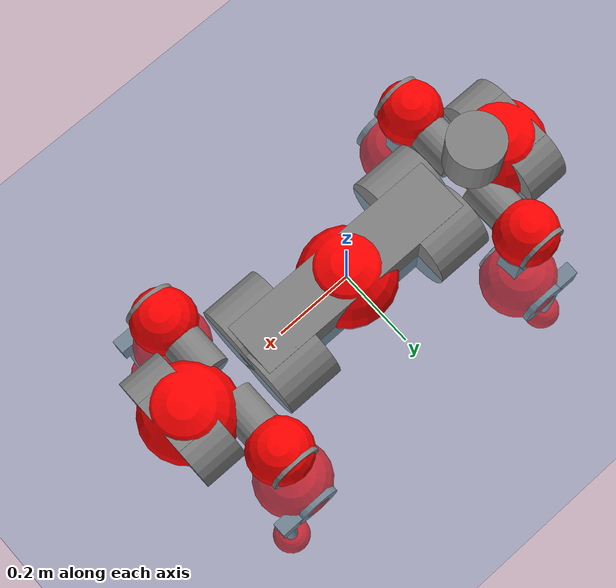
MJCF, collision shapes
<mujoco model="anymal_c">
  <compiler angle="radian" assetdir="assets" balanceinertia="true" inertiafromgeom="false"/>

  <option timestep="0.005" density="1.2" viscosity="2e-05"/>

  <size nkey="1"/>

  <visual>
    <quality shadowsize="8192"/>
    <map shadowclip="0.5"/>
  </visual>

  <default>
    <default class="/">
      <material specular="0" shininess="0.25"/>
      <geom contype="0" conaffinity="0" group="1" solref="-1000 -80"/>
      <site size="0.01 0.005 0.005" group="5"/>
      <general forcelimited="true" forcerange="-80 80" biastype="affine" gainprm="80" biasprm="0 -80 -2"/>
      <default class="anymal_c">
        <joint armature="0.01" damping="0.01" frictionloss="0.1"/>
        <default class="visual">
          <geom type="mesh" group="2"/>
          <default class="visual_zflip"/>
        </default>
        <default class="collision">
          <geom type="cylinder" group="3"/>
          <default class="foot">
            <geom size="0.03 0 0" type="sphere" condim="6" priority="1" friction="0.8 0.02 0.01" solimp="0.015 1 0.03"/>
          </default>
        </default>
      </default>
      <default class="reward_collision_sphere">
        <geom group="5" rgba="1 0 0 1"/>
      </default>
    </default>
  </default>

  <asset>
    <texture type="skybox" colorspace="auto" name="//unnamed_texture_0" builtin="gradient" rgb1="0.95 0.95 0.95" rgb2="0.95 0.95 0.95" width="100" height="600"/>
    <texture type="2d" colorspace="auto" name="texplane" builtin="checker" rgb1="0.345 0.575 0.748" rgb2="0.345 0.575 0.748" markrgb="1 1 1" width="512" height="512"/>
    <texture type="2d" colorspace="linear" name="base" file="base.png"/>
    <texture type="2d" colorspace="linear" name="top_shell" file="top_shell.png"/>
    <texture type="2d" colorspace="linear" name="bottom_shell" file="bottom_shell.png"/>
    <texture type="2d" colorspace="linear" name="remote" file="remote.png"/>
    <texture type="2d" colorspace="linear" name="hatch" file="hatch.png"/>
    <texture type="2d" colorspace="linear" name="handle" file="handle.png"/>
    <texture type="2d" colorspace="linear" name="face" file="face.png"/>
    <texture type="2d" colorspace="linear" name="battery" file="battery.png"/>
    <texture type="2d" colorspace="linear" name="lidar_cage" file="lidar_cage.png"/>
    <texture type="2d" colorspace="linear" name="depth_camera" file="depth_camera.png"/>
    <texture type="2d" colorspace="linear" name="wide_angle_camera" file="wide_angle_camera.png"/>
    <texture type="2d" colorspace="linear" name="lidar" file="lidar.png"/>
    <texture type="2d" colorspace="linear" name="drive" file="drive.png"/>
    <texture type="2d" colorspace="linear" name="hip_l" file="hip_l.png"/>
    <texture type="2d" colorspace="linear" name="shank_l" file="shank_l.png"/>
    <texture type="2d" colorspace="linear" name="foot" file="foot.png"/>
    <texture type="2d" colorspace="linear" name="thigh" file="thigh.png"/>
    <texture type="2d" colorspace="linear" name="shank_r" file="shank_r.png"/>
    <texture type="2d" colorspace="linear" name="hip_r" file="hip_r.png"/>
    <material name="MatPlane" class="/" texture="texplane" texuniform="true" texrepeat="2 2" specular="0.9" shininess="0.5"/>
    <material name="black_plastic" class="/" rgba="0.007 0.007 0.007 1"/>
    <material name="green" class="/" rgba="0.052 0.178 0.033 1"/>
    <material name="red" class="/" rgba="0.178 0.006 0.005 1"/>
    <material name="yellow" class="/" rgba="0.178 0.119 0.006 1"/>
    <material name="lwl" class="/" rgba="0.8 0.8 0.8 1"/>
    <material name="base" class="/" texture="base"/>
    <material name="top_shell" class="/" texture="top_shell"/>
    <material name="bottom_shell" class="/" texture="bottom_shell"/>
    <material name="hip_l" class="/" texture="hip_l"/>
    <material name="thigh" class="/" texture="thigh"/>
    <material name="shank_l" class="/" texture="shank_l"/>
    <material name="foot" class="/" texture="foot"/>
    <material name="hip_r" class="/" texture="hip_r"/>
    <material name="shank" class="/" texture="shank_r"/>
    <material name="hatch" class="/" texture="hatch"/>
    <material name="remote" class="/" texture="remote"/>
    <material name="handle" class="/" texture="handle"/>
    <material name="face" class="/" texture="face"/>
    <material name="depth_camera" class="/" texture="depth_camera"/>
    <material name="wide_angle_camera" class="/" texture="wide_angle_camera"/>
    <material name="battery" class="/" texture="battery"/>
    <material name="lidar_cage" class="/" texture="lidar_cage"/>
    <material name="lidar" class="/" texture="lidar"/>
    <material name="drive" class="/" texture="drive"/>
    <mesh name="base_0" class="/" file="base_0.obj"/>
    <mesh name="base_1" class="/" file="base_1.obj"/>
    <mesh name="base_2" class="/" file="base_2.obj"/>
    <mesh name="base_3" class="/" file="base_3.obj"/>
    <mesh name="base_4" class="/" file="base_4.obj"/>
    <mesh name="base_5" class="/" file="base_5.obj"/>
    <mesh name="top_shell" class="/" file="top_shell.obj"/>
    <mesh name="bottom_shell" class="/" file="bottom_shell.obj"/>
    <mesh name="remote" class="/" file="remote.obj"/>
    <mesh name="handle" class="/" file="handle.obj"/>
    <mesh name="face" class="/" file="face.obj"/>
    <mesh name="wide_angle_camera" class="/" file="wide_angle_camera.obj"/>
    <mesh name="depth_camera" class="/" file="depth_camera.obj"/>
    <mesh name="battery" class="/" file="battery.obj"/>
    <mesh name="lidar_cage" class="/" file="lidar_cage.obj"/>
    <mesh name="lidar" class="/" file="lidar.obj"/>
    <mesh name="drive" class="/" file="drive.obj"/>
    <mesh name="hip_l" class="/" file="hip_l.obj"/>
    <mesh name="thigh" class="/" file="thigh.obj"/>
    <mesh name="shank_l" class="/" file="shank_l.obj"/>
    <mesh name="foot" class="/" file="foot.obj"/>
    <mesh name="hip_r" class="/" file="hip_r.obj"/>
    <mesh name="hatch" class="/" file="hatch.obj"/>
    <mesh name="shank_r" class="/" file="shank_r.obj"/>
  </asset>

  <worldbody>
    <geom name="floor" class="/" size="100 100 0.125" type="plane" group="0" material="MatPlane"/>
    <light name="toplight_shadow" class="/" pos="0 0 5" dir="0.0990148 0.0990148 -0.990148" type="directional" ambient="0.04 0.04 0.04" diffuse="0.55 0.55 0.55" specular="0.12 0.12 0.12"/>
    <light name="toplight_fill" class="/" pos="0 0 5" dir="0.0990148 0.0990148 -0.990148" type="directional" castshadow="false" ambient="0.04 0.04 0.04" diffuse="0.3 0.3 0.3" specular="0.08 0.08 0.08"/>
    <body name="trunk" childclass="anymal_c" pos="-0.000205163 0.00088112 -0.000282638" quat="1 0.000144767 -0.00041318 3.90333e-05">
      <inertial pos="0.00332942 -0.000591906 0.0510158" quat="0.498418 0.498487 0.499906 0.503174" mass="18.7145" diaginertia="0.806759 0.366262 0.268487"/>
      <joint name="//unnamed_joint_0" type="free" armature="0" damping="0" frictionloss="0"/>
      <geom name="//unnamed_geom_1" class="visual" material="green" mesh="base_0"/>
      <geom name="//unnamed_geom_2" class="visual" material="yellow" mesh="base_1"/>
      <geom name="//unnamed_geom_3" class="visual" material="red" mesh="base_2"/>
      <geom name="//unnamed_geom_4" class="visual" material="black_plastic" mesh="base_3"/>
      <geom name="//unnamed_geom_5" class="visual" material="lwl" mesh="base_4"/>
      <geom name="//unnamed_geom_6" class="visual" material="base" mesh="base_5"/>
      <geom name="trunk_1" class="collision" size="0.289955 0.0699891 0.0899859" type="box"/>
      <geom name="trunk_2" class="collision" size="0.0899859 0.0724887" pos="0.228658 0.0630654 0" quat="0.707107 0 0.707107 0"/>
      <geom name="trunk_3" class="collision" size="0.0899859 0.0724887" pos="-0.228658 0.0630654 0" quat="0.707107 0 0.707107 0"/>
      <geom name="trunk_4" class="collision" size="0.0899859 0.0724887" pos="0.228658 -0.0630654 0" quat="0.707107 0 0.707107 0"/>
      <geom name="trunk_5" class="collision" size="0.0899859 0.0724887" pos="-0.228658 -0.0630654 0" quat="0.707107 0 0.707107 0"/>
      <geom name="//unnamed_geom_12" class="visual" material="top_shell" mesh="top_shell"/>
      <geom name="//unnamed_geom_13" class="visual" material="bottom_shell" mesh="bottom_shell"/>
      <geom name="//unnamed_geom_14" class="visual" material="remote" mesh="remote"/>
      <geom name="//unnamed_geom_15" class="visual" material="handle" mesh="handle"/>
      <geom name="//unnamed_geom_16" class="visual" pos="0.435764 0 0" quat="1 0 0 0" material="face" mesh="face"/>
      <geom name="trunk_6" class="collision" size="0.0549914 0.0699891 0.0899859" pos="0.493585 0 0" type="box"/>
      <geom name="//unnamed_geom_18" class="collision" size="0.0899859 0.0549914" pos="0.493585 0.0630654 0" quat="0.707107 0 0.707107 0"/>
      <geom name="//unnamed_geom_19" class="collision" size="0.0899859 0.0549914" pos="0.493585 -0.0630654 0" quat="0.707107 0 0.707107 0"/>
      <geom name="//unnamed_geom_20" class="visual" pos="0.485332 0 -0.0305506" quat="0.965926 0 0.258819 0" material="depth_camera" mesh="depth_camera"/>
      <geom name="//unnamed_geom_21" class="visual" pos="0.539317 0 0.015678" material="wide_angle_camera" mesh="wide_angle_camera"/>
      <geom name="//unnamed_geom_22" class="visual_zflip" pos="-0.435764 0 0" quat="0 0 0 1" material="face" mesh="face"/>
      <geom name="trunk_7" class="collision" size="0.0549914 0.0699891 0.0899859" pos="-0.493585 0 0" quat="0 0 0 1" type="box"/>
      <geom name="//unnamed_geom_24" class="collision" size="0.0899859 0.0549914" pos="-0.493585 -0.0630654 0" quat="0 -0.707107 0 0.707107"/>
      <geom name="//unnamed_geom_25" class="collision" size="0.0899859 0.0549914" pos="-0.493585 0.0630654 0" quat="0 -0.707107 0 0.707107"/>
      <geom name="//unnamed_geom_26" class="visual" pos="-0.485332 0 -0.0305506" quat="0 -0.258819 0 0.965926" material="depth_camera" mesh="depth_camera"/>
      <geom name="//unnamed_geom_27" class="visual_zflip" pos="-0.539317 0 0.015678" quat="0 0 0 1" material="wide_angle_camera" mesh="wide_angle_camera"/>
      <geom name="//unnamed_geom_28" class="visual" material="battery" mesh="battery"/>
      <geom name="//unnamed_geom_29" class="visual" pos="0 0.0669122 0.0304544" quat="0.683013 -0.183013 0.183013 0.683013" material="depth_camera" mesh="depth_camera"/>
      <geom name="//unnamed_geom_30" class="visual" pos="0 -0.0669122 0.0304544" quat="0.683013 0.183013 0.183013 -0.683013" material="depth_camera" mesh="depth_camera"/>
      <geom name="//unnamed_geom_31" class="visual" pos="-0.382673 0 0.0769763" quat="1 0 0 0" material="lidar_cage" mesh="lidar_cage"/>
      <geom name="trunk_8" class="collision" size="0.0699891 0.0599906" pos="-0.382673 0 0.139814"/>
      <geom name="//unnamed_geom_33" class="visual" pos="-0.382673 -5.90744e-05 0.148926" quat="0.707107 0 0 -0.707107" material="lidar" mesh="lidar"/>
      <geom name="//unnamed_geom_34" class="visual" pos="0.315285 0.0937492 -2.52476e-09" quat="0.258819 0.965926 0 0" material="drive" mesh="drive"/>
      <geom name="//unnamed_geom_35" class="visual" pos="0.315285 -0.0937492 2.52476e-09" quat="0.258819 -0.965926 0 0" material="drive" mesh="drive"/>
      <geom name="//unnamed_geom_36" class="visual" pos="-0.315285 0.0937492 2.52476e-09" quat="0 0 0.965926 -0.258819" material="drive" mesh="drive"/>
      <geom name="//unnamed_geom_37" class="visual" pos="-0.315285 -0.0937492 -2.52476e-09" quat="0 0 -0.965926 -0.258819" material="drive" mesh="drive"/>
      <geom name="//unnamed_geom_38" class="visual" pos="0.121951 0 0.0764527" quat="1 0 0 0" material="hatch" mesh="hatch"/>
      <geom name="//unnamed_geom_39" class="reward_collision_sphere" size="0.119981"/>
      <geom name="//unnamed_geom_40" class="reward_collision_sphere" size="0.119981" pos="0.473085 0 0"/>
      <geom name="//unnamed_geom_41" class="reward_collision_sphere" size="0.119981" pos="-0.473085 0 0"/>
      <site name="imu" pos="0.262583 0.00621872 0.047192" size="0.00999844"/>
      <camera name="track" pos="0 -1.80187 0" quat="0.707107 0.707107 0 0" mode="trackcom"/>
      <camera name="ego_camera" pos="0.473085 0 -0.0418919" quat="-0.5 -0.5 0.5 0.5"/>
      <body name="LF_HIP" pos="0.315602 0.0942062 0.000118347" quat="0.258731 0.965949 9.72775e-05 0.000102779">
        <inertial pos="0.0596262 -0.01287 -0.0086792" quat="-0.127111 0.706874 -0.136213 0.682362" mass="2.79989" diaginertia="0.00759269 0.0029535 0.00417916"/>
        <joint name="LF_HAA" pos="0 0 0" axis="1 0.000582767 0.000364708" range="-0.706229 0.480633" armature="0.0101051" damping="0.00921085" frictionloss="0.0995292"/>
        <geom name="//unnamed_geom_42" class="visual" pos="0 -0.00014852 2.43944e-05" quat="0.258819 -0.965926 0 0" material="hip_l" mesh="hip_l"/>
        <geom name="//unnamed_geom_43" class="visual" pos="0.0629729 -0.0743772 -0.0440243" quat="0.183013 -0.683013 0.683013 0.183013" material="drive" mesh="drive"/>
        <geom name="//unnamed_geom_44" class="collision" size="0.0499922 0.0699891" pos="0.0629729 -0.010775 -0.00723158" quat="-0.353553 -0.612372 0.612372 -0.353553"/>
        <body name="LF_THIGH" pos="0.0628104 -0.0663488 -0.0439925" quat="0.18283 -0.683112 0.683026 0.182773">
          <inertial pos="0.032411 0.000700946 -0.257516" quat="0.993241 -0.00544827 -0.0805552 0.0833859" mass="3.04386" diaginertia="0.0389827 0.0178332 0.00527052"/>
          <joint name="LF_HFE" pos="0 0 0" axis="0.999994 -0.00230204 0.0024721" range="-3.12637 3.13663" armature="0.0102348" damping="0.0101436" frictionloss="0.103892"/>
          <geom name="//unnamed_geom_45" class="visual" pos="0.00299167 4.71418e-06 0" quat="0.707107 0 0 -0.707107" material="thigh" mesh="thigh"/>
          <geom name="//unnamed_geom_46" class="collision" size="0.0649898 0.0399937" pos="0.042052 0 0" quat="0.5 0.5 -0.5 -0.5"/>
          <geom name="//unnamed_geom_47" class="collision" size="0.0374941 0.0299953 0.141292" pos="0.031539 0 -0.147998" quat="0.707107 0 0 -0.707107" type="box"/>
          <geom name="//unnamed_geom_48" class="visual" pos="0.105445 0 -0.29848" quat="1 0 0 0" material="drive" mesh="drive"/>
          <geom name="//unnamed_geom_49" class="collision" size="0.0499922 0.0699891" pos="0.0318544 0 -0.29848" quat="0.707107 0 0.707107 0"/>
          <geom name="//unnamed_geom_50" class="reward_collision_sphere" size="0.0799875" pos="0.0262825 0 0"/>
          <body name="LF_SHANK" pos="0.105596 -0.000311138 -0.299699" quat="1 7.3885e-05 -1.74349e-05 3.55453e-05">
            <inertial pos="0.00593305 -0.0543104 -0.0839338" quat="0.992928 -0.115907 -0.00110442 -0.0256426" mass="0.595529" diaginertia="0.0131943 0.00554618 0.00142933"/>
            <joint name="LF_KFE" pos="0 0 0" axis="1 -0.000164439 -0.00093758" range="-3.12863 3.12581" armature="0.0104123" damping="0.00734811" frictionloss="0.10097"/>
            <geom name="//unnamed_geom_51" class="visual" pos="0.000975519 0.00520152 0" quat="0.707107 0 0 -0.707107" material="shank_l" mesh="shank_l"/>
            <geom name="LF_kfe_act" class="collision" size="0.0599906 0.0199969" pos="0.021026 0 0" quat="0.5 0.5 -0.5 -0.5"/>
            <geom name="//unnamed_geom_53" class="collision" size="0.05749 0.0337447 0.018997" pos="0.021026 -0.0518028 0" quat="0.5 0.5 -0.5 -0.5" type="box"/>
            <geom name="//unnamed_geom_54" class="visual" pos="0.0137192 -0.077561 -0.353955" quat="0.382683 0 0 -0.92388" material="foot" mesh="foot"/>
            <geom name="LF_calf" class="collision" size="0.0174973 0.14123" pos="0.0137195 -0.0792372 -0.176977" quat="0.707107 0 0 -0.707107"/>
            <geom name="LF_foot" class="foot" size="0.0299289" pos="0.0137195 -0.0792372 -0.330391" quat="0.707107 0 0 -0.707107"/>
            <geom name="//unnamed_geom_57" class="reward_collision_sphere" size="0.0999844" pos="-0.052565 0 0"/>
            <geom name="//unnamed_geom_58" class="reward_collision_sphere" size="0.0499922" pos="0.0137195 -0.0792372 -0.330391"/>
            <site name="LF_foot" class="foot" pos="0.0137195 -0.0792372 -0.330391" quat="0.707107 0 0 -0.707107" size="0.00999844"/>
          </body>
        </body>
      </body>
      <body name="RF_HIP" pos="0.315458 -0.0936173 -0.000709517" quat="0.258827 -0.965924 3.22178e-06 -1.13019e-05">
        <inertial pos="0.0596655 0.0138692 -0.00840131" quat="0.134836 0.679252 0.127619 0.710035" mass="2.78897" diaginertia="0.00762265 0.00292121 0.00416089"/>
        <joint name="RF_HAA" pos="0 0 0" axis="0.999997 -0.000430409 -0.00252002" range="-0.498594 0.716112" armature="0.0102924" damping="0.00850174" frictionloss="0.101919"/>
        <geom name="//unnamed_geom_59" class="visual" pos="0 0.000148519 2.43943e-05" quat="0.258819 0.965926 0 0" material="hip_r" mesh="hip_r"/>
        <geom name="//unnamed_geom_60" class="visual" pos="0.0629728 0.0743772 -0.0440243" quat="0.183013 0.683013 0.683013 -0.183013" material="drive" mesh="drive"/>
        <geom name="//unnamed_geom_61" class="collision" size="0.0499922 0.0699891" pos="0.0629729 0.010775 -0.00723158" quat="-0.353553 0.612372 0.612372 0.353553"/>
        <body name="RF_THIGH" pos="0.0634042 0.0658473 -0.044884" quat="0.18287 0.68292 0.683094 -0.1832">
          <inertial pos="0.0318196 0.000844556 -0.25689" quat="0.992743 -0.00508571 -0.0809824 0.0887551" mass="3.07927" diaginertia="0.0392252 0.0177291 0.00526705"/>
          <joint name="RF_HFE" pos="0 0 0" axis="1 -0.000236271 0.000527048" stiffness="0.00612224" range="-3.14556 3.14022" armature="0.0100941" damping="0.00795248" frictionloss="0.104347"/>
          <geom name="//unnamed_geom_62" class="visual" pos="0.00299167 4.71418e-06 0" quat="0.707107 0 0 -0.707107" material="thigh" mesh="thigh"/>
          <geom name="//unnamed_geom_63" class="collision" size="0.0649898 0.0399937" pos="0.042052 0 0" quat="0.5 0.5 0.5 0.5"/>
          <geom name="//unnamed_geom_64" class="collision" size="0.0374941 0.0299953 0.141292" pos="0.031539 0 -0.147998" quat="0.707107 0 0 0.707107" type="box"/>
          <geom name="//unnamed_geom_65" class="visual" pos="0.105445 0 -0.29848" quat="1 0 0 0" material="drive" mesh="drive"/>
          <geom name="//unnamed_geom_66" class="collision" size="0.0499922 0.0699891" pos="0.0318544 0 -0.29848" quat="0.707107 0 0.707107 0"/>
          <geom name="//unnamed_geom_67" class="reward_collision_sphere" size="0.0799875" pos="0.0262825 0 0"/>
          <body name="RF_SHANK" pos="0.105121 0.00027098 -0.297767" quat="1 -0.000115639 -4.11367e-05 -0.000185399">
            <inertial pos="0.00683426 0.0543455 -0.0844242" quat="0.993084 0.114693 -0.00150447 0.0250367" mass="0.59197" diaginertia="0.0131593 0.00546208 0.00143494"/>
            <joint name="RF_KFE" pos="0 0 0" axis="0.999996 -0.00230344 -0.00185675" range="-3.14078 3.1455" armature="0.00988295" damping="0.00314797" frictionloss="0.10002"/>
            <geom name="//unnamed_geom_68" class="visual" pos="0.000975514 -0.00520151 0" quat="0.707107 0 0 0.707107" material="shank" mesh="shank_r"/>
            <geom name="RF_kfe_act" class="collision" size="0.0599906 0.0199969" pos="0.021026 0 0" quat="0.5 0.5 0.5 0.5"/>
            <geom name="//unnamed_geom_70" class="collision" size="0.05749 0.0337447 0.018997" pos="0.021026 0.0518028 0" quat="0.5 0.5 0.5 0.5" type="box"/>
            <geom name="//unnamed_geom_71" class="visual" pos="0.0137197 0.077561 -0.353955" quat="0.382683 0 0 0.92388" material="foot" mesh="foot"/>
            <geom name="RF_calf" class="collision" size="0.0174973 0.14123" pos="0.0137195 0.0792372 -0.176977" quat="0.707107 0 0 0.707107"/>
            <geom name="RF_foot" class="foot" size="0.0280213" pos="0.0137195 0.0792372 -0.330391" quat="0.707107 0 0 0.707107"/>
            <geom name="//unnamed_geom_74" class="reward_collision_sphere" size="0.0999844" pos="-0.052565 0 0"/>
            <geom name="//unnamed_geom_75" class="reward_collision_sphere" size="0.0499922" pos="0.0137195 0.0792372 -0.330391"/>
            <site name="RF_foot" class="foot" pos="0.0137195 0.0792372 -0.330391" quat="0.707107 0 0 0.707107" size="0.00999844"/>
          </body>
        </body>
      </body>
      <body name="LH_HIP" pos="-0.314806 0.0931537 -0.000200809" quat="-8.51878e-05 6.79414e-05 0.965928 -0.258812">
        <inertial pos="0.0601501 0.0130758 -0.00955322" quat="0.134173 0.680646 0.128574 0.708652" mass="2.76041" diaginertia="0.00749507 0.00294692 0.00411077"/>
        <joint name="LH_HAA" pos="0 0 0" axis="0.999999 0.00119284 0.000787111" range="-0.503882 0.71948" armature="0.0097437" damping="0.00892216" frictionloss="0.0964271"/>
        <geom name="//unnamed_geom_76" class="visual" pos="0 0.000148519 2.43943e-05" quat="-0.258819 -0.965926 0 0" material="hip_r" mesh="hip_r"/>
        <geom name="//unnamed_geom_77" class="visual" pos="0.0629728 0.0743772 -0.0440243" quat="0.183013 0.683013 0.683013 -0.183013" material="drive" mesh="drive"/>
        <geom name="//unnamed_geom_78" class="collision" size="0.0499922 0.0699891" pos="0.0629729 0.010775 -0.00723158" quat="-0.353553 0.612372 0.612372 0.353553"/>
        <body name="LH_THIGH" pos="0.0623689 0.0655858 -0.0449362" quat="0.182724 0.683058 0.68305 -0.182991">
          <inertial pos="0.0323888 0.000705654 -0.257064" quat="0.992757 -0.00560621 -0.0834025 0.086295" mass="3.05536" diaginertia="0.0392312 0.0175743 0.00525959"/>
          <joint name="LH_HFE" pos="0 0 0" axis="0.999998 -0.00107243 -0.00192623" range="-3.14385 3.14316" armature="0.00955604" damping="0.00467745" frictionloss="0.103931"/>
          <geom name="//unnamed_geom_79" class="visual" pos="0.00299167 4.71418e-06 0" quat="0.707107 0 0 -0.707107" material="thigh" mesh="thigh"/>
          <geom name="//unnamed_geom_80" class="collision" size="0.0649898 0.0399937" pos="0.042052 0 0" quat="0.5 0.5 -0.5 -0.5"/>
          <geom name="//unnamed_geom_81" class="collision" size="0.0374941 0.0299953 0.141292" pos="0.031539 0 -0.147998" quat="0.707107 0 0 -0.707107" type="box"/>
          <geom name="//unnamed_geom_82" class="visual" pos="0.105445 0 -0.29848" quat="1 0 0 0" material="drive" mesh="drive"/>
          <geom name="//unnamed_geom_83" class="collision" size="0.0499922 0.0699891" pos="0.0318544 0 -0.29848" quat="0.707107 0 0.707107 0"/>
          <geom name="//unnamed_geom_84" class="reward_collision_sphere" size="0.0799875" pos="0.0262825 0 0"/>
          <body name="LH_SHANK" pos="0.1057 -0.000298471 -0.299253" quat="1 -0.000362521 -5.18448e-05 -2.75823e-05">
            <inertial pos="0.00570877 0.0545178 -0.084174" quat="0.993049 0.115083 -0.00196869 0.0246235" mass="0.58782" diaginertia="0.0132317 0.00555673 0.00142713"/>
            <joint name="LH_KFE" pos="0 0 0" axis="0.99999 0.000266912 -0.0044653" range="-3.13751 3.13786" armature="0.0102984" damping="0.00515922" frictionloss="0.104412"/>
            <geom name="//unnamed_geom_85" class="visual" pos="0.000975514 -0.00520151 0" quat="-0.707107 0 0 -0.707107" material="shank" mesh="shank_r"/>
            <geom name="LH_kfe_act" class="collision" size="0.0599906 0.0199969" pos="0.021026 0 0" quat="0.5 0.5 -0.5 -0.5"/>
            <geom name="//unnamed_geom_87" class="collision" size="0.05749 0.0337447 0.018997" pos="0.021026 0.0518028 0" quat="0.5 0.5 -0.5 -0.5" type="box"/>
            <geom name="//unnamed_geom_88" class="visual" pos="0.0137197 0.077561 -0.353955" quat="-0.382683 0 0 -0.92388" material="foot" mesh="foot"/>
            <geom name="LH_calf" class="collision" size="0.0174973 0.14123" pos="0.0137195 0.0792372 -0.176977" quat="0.707107 0 0 -0.707107"/>
            <geom name="LH_foot" class="foot" size="0.0317722" pos="0.0137195 0.0792372 -0.330391" quat="0.707107 0 0 -0.707107"/>
            <geom name="//unnamed_geom_91" class="reward_collision_sphere" size="0.0999844" pos="-0.052565 0 0"/>
            <geom name="//unnamed_geom_92" class="reward_collision_sphere" size="0.0499922" pos="0.0137195 0.0792372 -0.330391"/>
            <site name="LH_foot" class="foot" pos="0.0137195 0.0792372 -0.330391" quat="0.707107 0 0 -0.707107" size="0.00999844"/>
          </body>
        </body>
      </body>
      <body name="RH_HIP" pos="-0.315752 -0.0933597 0.00036003" quat="-0.000362963 0.000140169 -0.965848 -0.259108">
        <inertial pos="0.0593282 -0.0141848 -0.00909712" quat="-0.127853 0.710022 -0.135737 0.679042" mass="2.8002" diaginertia="0.00758623 0.00295252 0.0042213"/>
        <joint name="RH_HAA" pos="0 0 0" axis="1 -0.000614519 0.000246864" range="-0.732986 0.475192" armature="0.00998033" damping="0.0120999" frictionloss="0.0956897"/>
        <geom name="//unnamed_geom_93" class="visual" pos="0 -0.00014852 2.43944e-05" quat="-0.258819 0.965926 0 0" material="hip_l" mesh="hip_l"/>
        <geom name="//unnamed_geom_94" class="visual" pos="0.0629729 -0.0743772 -0.0440243" quat="-0.183013 0.683013 -0.683013 -0.183013" material="drive" mesh="drive"/>
        <geom name="//unnamed_geom_95" class="collision" size="0.0499922 0.0699891" pos="0.0629729 -0.010775 -0.00723158" quat="0.353553 0.612372 -0.612372 0.353553"/>
        <body name="RH_THIGH" pos="0.0637218 -0.0664469 -0.0443183" quat="-0.183075 0.682999 -0.682976 -0.183142">
          <inertial pos="0.0326018 0.000710419 -0.256848" quat="0.993103 -0.00602292 -0.0811207 0.0844334" mass="3.10043" diaginertia="0.0391526 0.0177686 0.00536286"/>
          <joint name="RH_HFE" pos="0 0 0" axis="1 0.000246358 -0.000382533" range="-3.14683 3.15831" armature="0.00977764" damping="0.00522261" frictionloss="0.101546"/>
          <geom name="//unnamed_geom_96" class="visual" pos="0.00299167 4.71418e-06 0" quat="0.707107 0 0 -0.707107" material="thigh" mesh="thigh"/>
          <geom name="//unnamed_geom_97" class="collision" size="0.0649898 0.0399937" pos="0.042052 0 0" quat="0.5 0.5 0.5 0.5"/>
          <geom name="//unnamed_geom_98" class="collision" size="0.0374941 0.0299953 0.141292" pos="0.031539 0 -0.147998" quat="0.707107 0 0 0.707107" type="box"/>
          <geom name="//unnamed_geom_99" class="visual" pos="0.105445 0 -0.29848" quat="1 0 0 0" material="drive" mesh="drive"/>
          <geom name="//unnamed_geom_100" class="collision" size="0.0499922 0.0699891" pos="0.0318544 0 -0.29848" quat="0.707107 0 0.707107 0"/>
          <geom name="//unnamed_geom_101" class="reward_collision_sphere" size="0.0799875" pos="0.0262825 0 0"/>
          <body name="RH_SHANK" pos="0.104438 2.99761e-05 -0.298312" quat="1 5.08962e-05 9.6041e-06 -5.27563e-05">
            <inertial pos="0.00662209 -0.0546963 -0.0843827" quat="0.992911 -0.116108 -0.000673298 -0.0254305" mass="0.582459" diaginertia="0.0131321 0.00545166 0.00141626"/>
            <joint name="RH_KFE" pos="0 0 0" axis="0.999977 0.0022011 -0.00639621" range="-3.1253 3.12526" armature="0.0100292" damping="0.0057357" frictionloss="0.096193"/>
            <geom name="//unnamed_geom_102" class="visual" pos="0.000975519 0.00520152 0" quat="0.707107 0 0 -0.707107" material="shank_l" mesh="shank_l"/>
            <geom name="RH_kfe_act" class="collision" size="0.0599906 0.0199969" pos="0.021026 0 0" quat="0.5 0.5 0.5 0.5"/>
            <geom name="//unnamed_geom_104" class="collision" size="0.05749 0.0337447 0.018997" pos="0.021026 -0.0518028 0" quat="0.5 0.5 0.5 0.5" type="box"/>
            <geom name="//unnamed_geom_105" class="visual" pos="0.0137192 -0.077561 -0.353955" quat="0.382683 0 0 -0.92388" material="foot" mesh="foot"/>
            <geom name="RH_calf" class="collision" size="0.0174973 0.14123" pos="0.0137195 -0.0792372 -0.176977" quat="0.707107 0 0 0.707107"/>
            <geom name="RH_foot" class="foot" size="0.0282037" pos="0.0137195 -0.0792372 -0.330391" quat="0.707107 0 0 0.707107"/>
            <geom name="//unnamed_geom_108" class="reward_collision_sphere" size="0.0999844" pos="-0.052565 0 0"/>
            <geom name="//unnamed_geom_109" class="reward_collision_sphere" size="0.0499922" pos="0.0137195 -0.0792372 -0.330391"/>
            <site name="RH_foot" class="foot" pos="0.0137195 -0.0792372 -0.330391" quat="0.707107 0 0 0.707107" size="0.00999844"/>
          </body>
        </body>
      </body>
    </body>
  </worldbody>

  <contact>
    <pair class="/" geom1="floor" geom2="LF_foot" name="//unnamed_contact_0"/>
    <pair class="/" geom1="floor" geom2="RF_foot" name="//unnamed_contact_1"/>
    <pair class="/" geom1="floor" geom2="LH_foot" name="//unnamed_contact_2"/>
    <pair class="/" geom1="floor" geom2="RH_foot" name="//unnamed_contact_3"/>
  </contact>

  <actuator>
    <general name="LF_HAA" class="/" joint="LF_HAA" forcerange="-78.4587 78.4587" gainprm="80.4702" biasprm="0 -80.4702 -1.89669"/>
    <general name="LF_HFE" class="/" joint="LF_HFE" forcerange="-80.2704 80.2704" gainprm="80.4702" biasprm="0 -80.4702 -1.89669"/>
    <general name="LF_KFE" class="/" joint="LF_KFE" forcerange="-79.4674 79.4674" gainprm="80.4702" biasprm="0 -80.4702 -1.89669"/>
    <general name="RF_HAA" class="/" joint="RF_HAA" forcerange="-82.4475 82.4475" gainprm="80.4702" biasprm="0 -80.4702 -1.89669"/>
    <general name="RF_HFE" class="/" joint="RF_HFE" forcerange="-81.6023 81.6023" gainprm="80.4702" biasprm="0 -80.4702 -1.89669"/>
    <general name="RF_KFE" class="/" joint="RF_KFE" forcerange="-82.5846 82.5846" gainprm="80.4702" biasprm="0 -80.4702 -1.89669"/>
    <general name="LH_HAA" class="/" joint="LH_HAA" forcerange="-79.1506 79.1506" gainprm="80.4702" biasprm="0 -80.4702 -1.89669"/>
    <general name="LH_HFE" class="/" joint="LH_HFE" forcerange="-80.4793 80.4793" gainprm="80.4702" biasprm="0 -80.4702 -1.89669"/>
    <general name="LH_KFE" class="/" joint="LH_KFE" forcerange="-80.8583 80.8583" gainprm="80.4702" biasprm="0 -80.4702 -1.89669"/>
    <general name="RH_HAA" class="/" joint="RH_HAA" forcerange="-81.5267 81.5267" gainprm="80.4702" biasprm="0 -80.4702 -1.89669"/>
    <general name="RH_HFE" class="/" joint="RH_HFE" forcerange="-79.9844 79.9844" gainprm="80.4702" biasprm="0 -80.4702 -1.89669"/>
    <general name="RH_KFE" class="/" joint="RH_KFE" forcerange="-79.7594 79.7594" gainprm="80.4702" biasprm="0 -80.4702 -1.89669"/>
  </actuator>

  <sensor>
    <gyro site="imu" name="imu_angular_velocity"/>
    <velocimeter site="imu" name="imu_linear_velocity"/>
    <framelinvel objtype="site" objname="LF_foot" name="LF_foot_global_linear_velocity"/>
    <framelinvel objtype="site" objname="RF_foot" name="RF_foot_global_linear_velocity"/>
    <framelinvel objtype="site" objname="LH_foot" name="LH_foot_global_linear_velocity"/>
    <framelinvel objtype="site" objname="RH_foot" name="RH_foot_global_linear_velocity"/>
  </sensor>

  <keyframe>
    <key name="home" qpos="0 0 0.55 1 0 0 0 0 0.4 -0.8 0 -0.4 0.8 0 -0.4 0.8 0 0.4 -0.8"/>
  </keyframe>
</mujoco>
